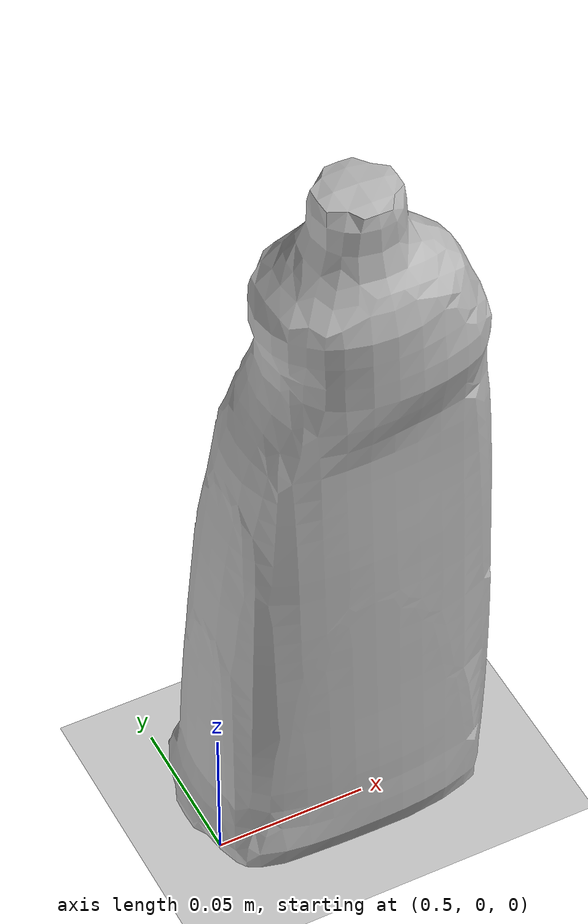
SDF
<sdf version="1.7">
 <world name="default">
  <model name="ground_plane">
   <static>1</static>
   <link name="link">
    <collision name="collision">
     <geometry><plane><normal>0 0 1</normal><size>100 100</size></plane></geometry>
     <surface>
      <contact><collide_bitmask>65535</collide_bitmask></contact>
      <friction><ode><mu>100</mu><mu2>50</mu2></ode></friction>
     </surface>
    </collision>
    <visual name="visual">
     <cast_shadows>0</cast_shadows>
     <geometry><plane><normal>0 0 1</normal><size>100 100</size></plane></geometry>
     <material>
      <script><uri>file://media/materials/scripts/gazebo.material</uri><name>Gazebo/Grey</name></script>
     </material>
    </visual>
   </link>
  </model>
  <gravity>0 0 -9.8</gravity>
  <magnetic_field>6e-06 2.3e-05 -4.2e-05</magnetic_field>
  <atmosphere type="adiabatic"/>
  <physics type="ode">
   <max_step_size>0.001</max_step_size>
   <real_time_factor>1</real_time_factor>
   <real_time_update_rate>1000</real_time_update_rate>
  </physics>
  <scene><ambient>0.4 0.4 0.4 1</ambient><background>0.7 0.7 0.7 1</background><shadows>1</shadows></scene>
  <spherical_coordinates>
   <surface_model>EARTH_WGS84</surface_model>
   <latitude_deg>0</latitude_deg>
   <longitude_deg>0</longitude_deg>
   <elevation>0</elevation>
   <heading_deg>0</heading_deg>
  </spherical_coordinates>
  <light name="user_point_light_0" type="point">
   <pose>2.3043 0.093688 1 0 -0 0</pose>
   <diffuse>0.5 0.5 0.5 1</diffuse>
   <specular>0.1 0.1 0.1 1</specular>
   <attenuation>
    <range>20</range>
    <constant>0.5</constant>
    <linear>0.01</linear>
    <quadratic>0.001</quadratic>
   </attenuation>
   <cast_shadows>0</cast_shadows>
   <direction>0 0 -1</direction>
  </light>
  <model name="bleach_cleanser">
   <static>0</static>
   <link name="link">
    <inertial>
     <pose>-0.017139 0.011574 0.099698 -3.07106 0.000113 1.56037</pose>
     <mass>0.000972343</mass>
     <inertia>
      <ixx>4.56613e-06</ixx>
      <ixy>-1.26903e-22</ixy>
      <ixz>7.80825e-22</ixz>
      <iyy>4.25149e-06</iyy>
      <iyz>-1.59888e-22</iyz>
      <izz>7.65292e-07</izz>
     </inertia>
    </inertial>
    <collision name="collision">
     <geometry><mesh><uri>model://021_bleach_cleanser/google_16k/low_poly.obj</uri></mesh></geometry>
    </collision>
    <visual name="visual">
     <geometry><mesh><uri>model://021_bleach_cleanser/google_16k/textured.obj</uri></mesh></geometry>
     <material>
      <script><uri>model://021_bleach_cleanser/bleach_cleanser.material</uri><name>bleach_cleanser</name></script>
     </material>
    </visual>
   </link>
   <pose>0.565362 -0.000766 5.8e-05 -0.001198 0.001186 -0.004643</pose>
  </model>
 </world>
</sdf>
